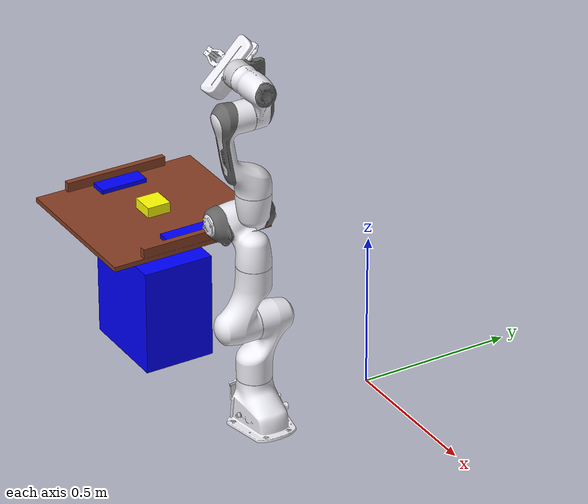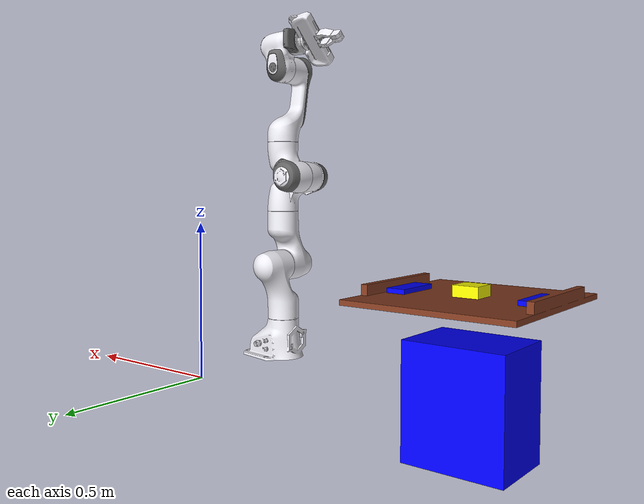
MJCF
<mujoco model="dual-panda v01">

    <include file="panda/assets/assets.xml" />
    <include file="panda/assets/gripper_assets.xml" />

    <!-- change this for different objects -->

    <include file="panda/assets/tray.xml" />

    <compiler meshdir="" />

    <option noslip_iterations="500" />
    <option solver="Newton" iterations="100" tolerance="1e-5"/>

    <option cone="elliptic"> </option>
    <option><flag multiccd="enable"/> </option>

    <default>
        <default class='torso'>
            <geom group='2' contype='0' conaffinity='0' rgba=".95 .99 .92 1" />
        </default>/ </default>

    <worldbody>

        <body name='torso' childclass='torso'>

            <body name='leftarm' pos='0 -0.4 0' euler='0 0 3.14'>
                <include file="panda/assets/chainL.xml" />
            </body>

        </body>

        <body name="collision_object" pos="-0.8 -0.3 0.3" quat="0.5 0.5 0.5 0.5">
            <joint type="free" name="object_virtual_joint" pos="0.0 0.0 0.0" damping="5" />
            <geom class="object_viz" mesh="tray_viz"  rgba = "0.52941176 0.24313725 0.1372549 1"/>
            <geom class="object_col" mesh="trayPart-0" friction="0.06 0.5 0.01" condim="6"/>
            <inertial pos="0 0 0" mass="1.5" diaginertia="0.03013 0.08413 0.11333" />
            <body name="support_grasp_1" pos="0.01 0.0 0.2" euler="0 0 0">
                <geom type="box" size="0.08 0.02 0.03" rgba="0 0 1 1 " friction="1 0.5 0.01" condim="6" />
                <inertial pos="0 0 0" mass="0.5" diaginertia="0.03013 0.08413 0.11333" />
            </body>
            <body name="support_grasp_2" pos="-0.01 0.0 -0.2" euler="0 0 0">
                <geom type="box" size="0.08 0.02 0.03" rgba="0 0 1 1 " friction="1 0.5 0.01" condim="6" />
                <inertial pos="0 0 0" mass="0.5" diaginertia="0.03013 0.08413 0.11333" />
            </body>

        </body>

        <body name="cylinder_body" pos="-0.8 -0.3 0.3" quat="0 0.7071068 0 0.7071068">

            <joint type="free" />

            <geom type="box" size="0.04 0.04 0.04" rgba="1 1 0 1" friction="0.06 0.5 0.01" condim="6"/>    <!--friction="1 0.5 0.0001" -->
            <inertial pos="0 0 0" mass="0.3" diaginertia="0.024 0.024 0.0136"/>
        </body>

        <body name="box_body1" pos="-0.8 -0.3 0" quat="1 0 0 0">
            <geom type="box" size="0.16 0.12 0.18" rgba="0 0 1 1" />
            <inertial pos="0 0 0" mass="2" diaginertia="2 2 2" />
        </body>

    </worldbody>

    <include file='panda/assets/actuatorL.xml' />
    <include file='panda/assets/gripper_actuatorL.xml' />

</mujoco>

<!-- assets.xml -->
<mujocoinclude>
    <compiler angle="radian" />
    <option noslip_iterations="20"/>
    <option timestep="0.002"/>
    <size nuser_actuator="5"/>
    <option integrator="implicit"/>
    <asset>
        <mesh name="link0_col" file="./panda/meshes/collision/link0.stl"/>
        <mesh name="link1_col" file="./panda/meshes/collision/link1.stl"/>
        <mesh name="link2_col" file="./panda/meshes/collision/link2.stl"/>
        <mesh name="link3_col" file="./panda/meshes/collision/link3.stl"/>
        <mesh name="link4_col" file="./panda/meshes/collision/link4.stl"/>
        <mesh name="link5_col" file="./panda/meshes/collision/link5.stl"/>
        <mesh name="link6_col" file="./panda/meshes/collision/link6.stl"/>
        <mesh name="link7_col" file="./panda/meshes/collision/link7.stl"/>
        <mesh name="hand_col" file="./panda/meshes/collision/hand.stl"/>
        <mesh name="link0_viz" file="./panda/meshes/visual/link0.stl"/>
        <mesh name="link1_viz" file="./panda/meshes/visual/link1.stl"/>
        <mesh name="link2_viz" file="./panda/meshes/visual/link2.stl"/>
        <mesh name="link3_viz" file="./panda/meshes/visual/link3.stl"/>
        <mesh name="link3_dark_viz" file="./panda/meshes/visual/link3_dark.stl" scale="1.01 1.01 1.01"/>
        <mesh name="link4_viz" file="./panda/meshes/visual/link4.stl"/>
        <mesh name="link4_dark_viz" file="./panda/meshes/visual/link4_dark.stl" scale="1.01 1.01 1.01"/>
        <mesh name="link5_viz" file="./panda/meshes/visual/link5.stl"/>
        <mesh name="link5_dark_viz" file="./panda/meshes/visual/link5_dark.stl" scale="1.01 1.01 1.01"/>
        <mesh name="link6_viz" file="./panda/meshes/visual/link6.stl"/>
        <mesh name="link6_dark_viz" file="./panda/meshes/visual/link6_dark.stl" scale="1.01 1.01 1.01"/>
        <mesh name="link7_viz" file="./panda/meshes/visual/link7.stl"/>
        <mesh name="link7_dark_viz" file="./panda/meshes/visual/link7_dark.stl" scale="1.01 1.01 1.01"/>
        <mesh name="hand_viz" file="./panda/meshes/visual/hand.stl"/>
    </asset>

    <default>
        <default class = "object">
            <default class="object_viz">
                <geom contype="0" conaffinity="0" group="0" type="mesh" rgba=".92 .92 .95 1"/>
            </default>
            <default class="object_col">
                <geom contype="1" conaffinity="1" group="3" type="mesh" rgba=".5 .6 .7 1"/>
            </default>
        </default>
    </default>

    <default>
        <default class="panda">
            <joint pos="0 0 0" axis="0 0 1" limited="true"/>
            <default class="panda_viz">
                <geom contype="0" conaffinity="0" group="0" type="mesh" rgba=".92 .92 .95 1"/>
            </default>
            <default class="panda_grey_viz">
                <geom contype="0" conaffinity="0" group="0" type="mesh" rgba=".4 .4 .4 1"/>
            </default>

            <default class="panda_col">
                <geom contype="1" conaffinity="1" group="3" type="mesh" rgba=".5 .6 .7 1"/>
            </default>
            <default class="panda_arm">
                <joint damping="100"/>
            </default>
             <default class="panda_forearm">
                <joint damping="10"/>
            </default>
             <default class="panda_finger">
                <joint damping="10" armature='5'/>
                <geom friction="10 10 10" user="0" rgba="0.5 0.6 0.7 .4" contype="1" conaffinity="0" condim="6" group="3" />
                <position user="1002 40 2001 -0.0001 0.0001"/>
            </default>
        </default>
    </default>
</mujocoinclude>

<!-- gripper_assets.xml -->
<mujocoinclude>
    <asset>
        <mesh name="finger_col" file="./panda/meshes/collision/finger.stl" scale='1.75 1.0 1.75'/>
        <mesh name="finger_viz" file="./panda/meshes/visual/finger.stl" scale='1.75 1.0 1.75'/>
    </asset>

    <default>
        <default class="panda_overlay">
            <joint limited="false" damping="1000" armature="1" frictionloss="10"/>
            <geom contype="0" conaffinity="0" group="2" type="mesh" rgba=".42 0.42 0.42 .5"/>
        </default>
    </default>

    <sensor>
        <jointpos name="fr_fin_jp1" joint="left_panda_finger_joint1"/>
        <jointpos name="fr_fin_jp2" joint="left_panda_finger_joint2"/>
        <jointvel name="fr_fin_jv1" joint="left_panda_finger_joint1"/>
        <jointvel name="fr_fin_jv2" joint="left_panda_finger_joint2"/>
    </sensor>

</mujocoinclude>

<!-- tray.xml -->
<mujocoinclude>
    <asset>
        <mesh name="tray_viz" file="./panda/meshes/visual/objects/tray.stl" scale="0.4 0.2 0.2" />
        <mesh name="trayPart-0"
            file="./panda/meshes/collision/objects/decompositions/tray/trayPart-0.stl"
            scale="0.4 0.2 0.2" />
        <mesh name="trayPart-1"
            file="./panda/meshes/collision/objects/decompositions/tray/trayPart-1.stl"
            scale="0.2 0.2 0.2" />
        <mesh name="trayPart-2"
            file="./panda/meshes/collision/objects/decompositions/tray/trayPart-2.stl"
            scale="0.2 0.2 0.2" />
    </asset>
</mujocoinclude>

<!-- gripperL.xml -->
<mujoco>
    <body name="left_panda_hand" pos="0 0 0.107" euler="0 0 1.57">
        <inertial pos="0 0 0" euler="0 0 0" mass="0.38" diaginertia="0.1 0.1 0.1" />
        <geom class="panda_viz" mesh="hand_viz"/>
        <geom class="panda_col" mesh="hand_col"/>

        <body name="left_panda_leftfinger" pos="0 0 0.0584" quat="1 0 0 0">
            <joint name="left_panda_finger_joint1"  axis="0 1 0" type="slide" range="0 0.04" damping="100" armature='5'/>
            <geom class="panda_viz" mesh="finger_viz"/>
            <geom class="panda_col" mesh="finger_col" mass="0.01"/>
        </body>

        <body name="left_panda_rightfinger" pos="0 0 0.0584" quat="1 0 0 0">
            <joint name="left_panda_finger_joint2" axis="0 -1 0" type="slide" range="0 0.04" damping="100" armature='5'/>
            <geom quat="0 0 0 1" class="panda_viz" mesh="finger_viz"/>
            <geom quat="0 0 0 1" class="panda_col" mesh="finger_col" mass="0.01" condim="6" friction="10 10 10"/>
        </body>
    </body>
</mujoco>

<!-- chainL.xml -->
<mujocoinclude>
    <body name="left_panda_link0" childclass="panda" >
        <inertial pos="0 0 0" mass="3.06" diaginertia="0.3 0.3 0.3" />
        <geom class="panda_viz" mesh="link0_viz"/>
        <geom class="panda_col" mesh="link0_col"/>
        <body name="left_panda_link1" pos="0 0 0.333">
            <inertial pos="3.875e-03 2.081e-03 -0.1750" mass="4.970684" fullinertia="7.0337e-01 7.0661e-01 9.1170e-03 -1.3900e-04 6.7720e-03 1.9169e-02" />
            <joint name="left_panda_joint1" range="-2.8973 2.8973" class="panda_arm" frictionloss="5"/>
            <geom class="panda_viz" mesh="link1_viz"/>
            <geom class="panda_col" mesh="link1_col"/>
            <body name="left_panda_link2" pos="0 0 0" quat="0.707107 -0.707107 0 0">
                <inertial pos="-3.141e-03 -2.872e-02 3.495e-03" mass="0.646926" fullinertia="7.9620e-03 2.8110e-02 2.5995e-02 -3.9250e-03 1.0254e-02 7.0400e-04" />
                <joint name="left_panda_joint2" range="-1.7628 1.7628" class="panda_arm" frictionloss="2"/>
                <geom class="panda_viz" mesh="link2_viz"/>
                <geom class="panda_col" mesh="link2_col"/>
                <body name="left_panda_link3" pos="0 -0.316 0" quat="0.707107 0.707107 0 0">
                    <inertial pos="2.7518e-02 3.9252e-02 -6.6502e-02" mass="3.228604" fullinertia="3.7242e-02 3.6155e-02 1.0830e-02 -4.7610e-03 -1.1396e-02 -1.2805e-02" />
                    <joint name="left_panda_joint3" range="-2.8973 2.8973" class="panda_arm" frictionloss="2"/>
                    <geom class="panda_viz" mesh="link3_viz"/>
                    <geom class="panda_grey_viz" mesh="link3_dark_viz" pos="0 .001 0"/>
                    <geom class="panda_col" mesh="link3_col"/>
                    <body name="left_panda_link4" pos="0.0825 0 0" quat="0.707107 0.707107 0 0">
                        <inertial pos="-5.317e-02 1.04419e-01 2.7454e-02" mass="3.587895" fullinertia="2.5853e-02 1.9552e-02 2.8323e-02 7.7960e-03 -1.3320e-03 8.6410e-03" />
                        <joint name="left_panda_joint4" range="-3.0718 -0.4" class="panda_arm" frictionloss="0.5"/>
                        <geom class="panda_viz" mesh="link4_viz"/>
                        <geom class="panda_grey_viz" mesh="link4_dark_viz"/>
                        <geom class="panda_col" mesh="link4_col"/>
                        <body name="left_panda_link5" pos="-0.0825 0.384 0" quat="0.707107 -0.707107 0 0">
                            <inertial pos="-1.1953e-02 4.1065e-02 -3.8437e-02" mass="1.225946" fullinertia="3.5549e-02 2.9474e-02 8.6270e-03 -2.1170e-03 -4.0370e-03 2.2900e-04" />
                            <joint name="left_panda_joint5" range="-2.8973 2.8973" class="panda_forearm" frictionloss="1"/>
                            <geom class="panda_viz" mesh="link5_viz"/>
                            <geom class="panda_grey_viz" mesh="link5_dark_viz"/>
                            <geom class="panda_col" mesh="link5_col" mass="3.00049"/>
                            <body name="left_panda_link6" pos="0 0 0" euler='1.57 0 1.57'>
                                <inertial pos="6.0149e-02 -1.4117e-02 -1.0517e-02" mass="1.666555" fullinertia="1.9640e-03 4.3540e-03 5.4330e-03 1.0900e-04 -1.1580e-03 3.4100e-04" />
                                <joint name="left_panda_joint6" range="-1.6573 2.1127" class="panda_forearm" frictionloss="0.5"/>
                                <geom class="panda_viz" mesh="link6_viz"/>
                                <geom class="panda_grey_viz" mesh="link6_dark_viz"/>
                                <geom class="panda_col" mesh="link6_col"/>
                                <body name="left_panda_link7" pos="0.088 0 0" euler='1.57 0 0.7854'>
                                    <inertial pos="1.0517e-02 -4.252e-03 6.1597e-02" mass="7.35522e-01" fullinertia="1.2516e-02 1.0027e-02 4.8150e-03 -4.2800e-04 -1.1960e-03 -7.4100e-04" />
                                    <joint name="left_panda_joint7" range="-2.8973 2.8973" class="panda_forearm" frictionloss="0.5"/>
                                    <geom class="panda_viz" mesh="link7_viz" rgba=".8 .8 .82 1"/>
                                    <geom class="panda_grey_viz" mesh="link7_dark_viz" pos="0 0 -.0008"/>
                                    <geom class="panda_col" mesh="link7_col"/>
                                    <camera name="Franka_wrist_cam" pos=".050 -.050 0.15" euler="2.95 0.2 -.787"/>
                                    <site name='end_effector' pos='0 0 0.165' size='0.01' euler='1.57 0 0'/>

                                    <!-- End Effector -->
                                    <body name="left_panda_gripper">
                                       <include file = "./panda/assets/gripperL.xml" />
                                       <!-- Mocap-->

                                    </body>
                                </body>
                            </body>
                        </body>
                    </body>
                </body>
            </body>
        </body>
    </body>

</mujocoinclude>

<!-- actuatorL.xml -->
<mujocoinclude>
    <actuator>
        <motor class="panda" name="left_panda_joint1" joint="left_panda_joint1"  forcerange="-87 87" ctrlrange="-87 87"/>
        <motor class="panda" name="left_panda_joint2" joint="left_panda_joint2"  forcerange="-87 87" ctrlrange="-87 87"/>
        <motor class="panda" name="left_panda_joint3" joint="left_panda_joint3"  forcerange="-87 87"   ctrlrange="-87 87"/>
        <motor class="panda" name="left_panda_joint4" joint="left_panda_joint4"  forcerange="-87 87"   ctrlrange="-87 87"/>
        <motor class="panda" name="left_panda_joint5" joint="left_panda_joint5"  forcerange="-12 12"   ctrlrange="-12 12"/>
        <motor class="panda" name="left_panda_joint6" joint="left_panda_joint6"  forcerange="-12 12"   ctrlrange="-12 12"/>
        <motor class="panda" name="left_panda_joint7" joint="left_panda_joint7"  forcerange="-12 12"   ctrlrange="-12 12"/>
    </actuator>
</mujocoinclude>

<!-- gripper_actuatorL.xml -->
<mujocoinclude>
    <actuator>
        <position name="L_gripper_finger_joint1" joint="left_panda_finger_joint1" class="panda_finger" kp="5000" forcerange="-70 70" ctrlrange="0 0.04"/> velocity=".2"
        <position name="L_gripper_finger_joint2" joint="left_panda_finger_joint2" class="panda_finger" kp="5000" forcerange="-70 70" ctrlrange="0 0.04"/> velocity=".2"
    </actuator>
</mujocoinclude>
